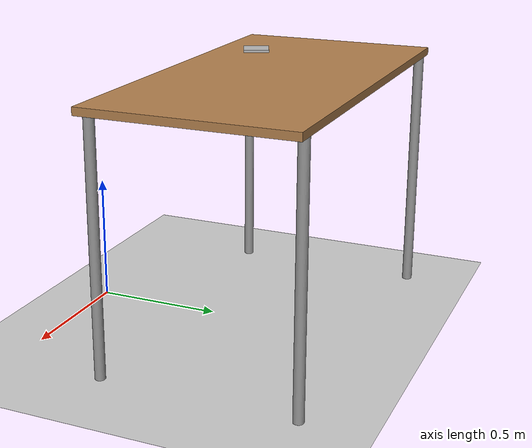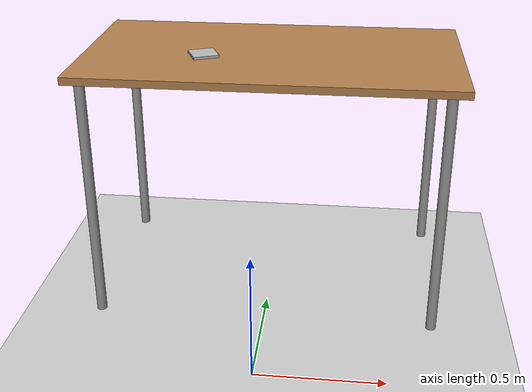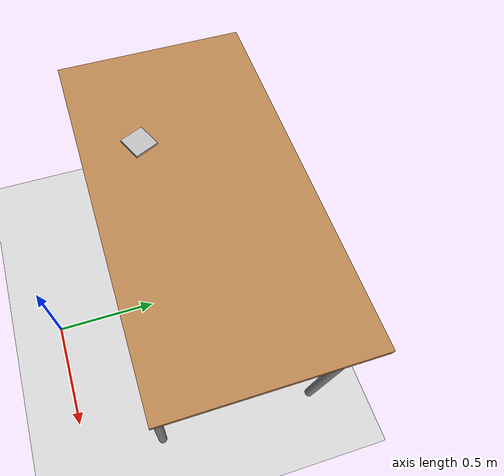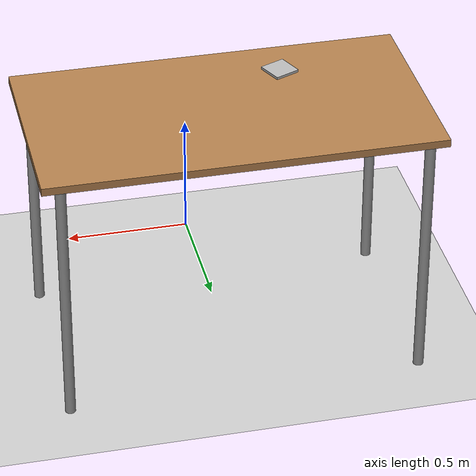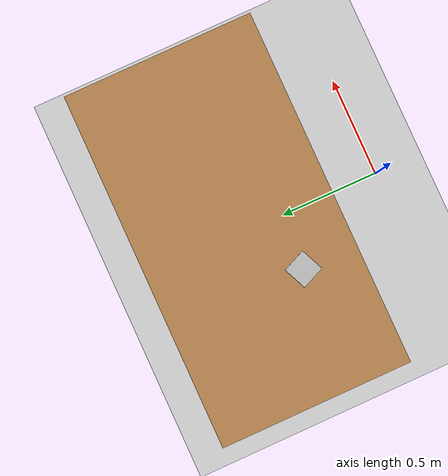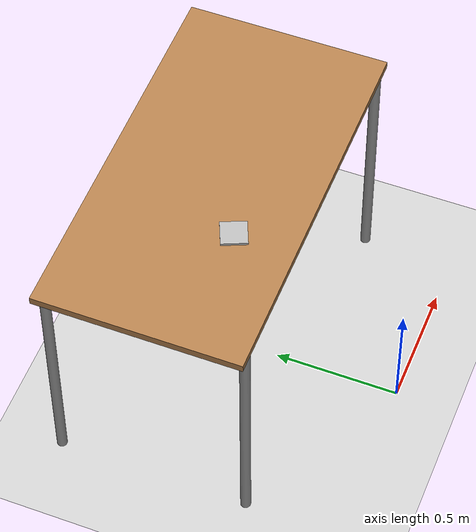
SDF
<?xml version="1.0" ?>

<sdf version="1.5">
	<world name="lab">
		<!-- A global light source -->
		<include>
			<uri>model://sun</uri>
		</include>

		<!-- A ground plane -->
		<include>
			<uri>model://ground_plane</uri>
		</include>

		<!-- A table -->
		<include>
			<uri>model://table</uri>
			<pose>0 0.75 0 0 0 0</pose>
		</include>

		<!-- A box -->
		<include>
			<uri>model://Apriltag36_11_00000</uri>
			<pose>-0.25 0.58 1.05 0 0 0.41</pose>
		</include>

	</world>
</sdf>

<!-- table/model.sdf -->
<sdf version="1.5">
  <model name="table">
    <static>true</static>
    <link name="link">
      <collision name="surface">
        <pose>0 0 1.0 0 0 0</pose>
        <geometry>
          <box>
            <size>1.5 0.8 0.03</size>
          </box>
        </geometry>
        <surface>
          <friction>
            <ode>
              <mu>0.6</mu>
              <mu2>0.6</mu2>
            </ode>
          </friction>
        </surface>
      </collision>
      <visual name="visual1">
        <pose>0 0 1.0 0 0 0</pose>
        <geometry>
          <box>
            <size>1.5 0.8 0.03</size>
          </box>
        </geometry>
        <material>
          <script>
            <uri>model://media/materials/scripts/gazebo.material</uri>
            <name>Gazebo/Wood</name>
          </script>
        </material>
      </visual>
      <collision name="front_left_leg">
        <pose>0.68 0.38 0.5 0 0 0</pose>
        <geometry>
          <cylinder>
            <radius>0.02</radius>
            <length>1.0</length>
          </cylinder>
        </geometry>
      </collision>
      <visual name="front_left_leg">
        <pose>0.68 0.38 0.5 0 0 0</pose>
        <geometry>
          <cylinder>
            <radius>0.02</radius>
            <length>1.0</length>
          </cylinder>
        </geometry>
        <material>
          <script>
            <uri>model://media/materials/scripts/gazebo.material</uri>
            <name>Gazebo/Grey</name>
          </script>
        </material>
      </visual>
      <collision name="front_right_leg">
        <pose>0.68 -0.38 0.5 0 0 0</pose>
        <geometry>
          <cylinder>
            <radius>0.02</radius>
            <length>1.0</length>
          </cylinder>
        </geometry>
      </collision>
      <visual name="front_right_leg">
        <pose>0.68 -0.38 0.5 0 0 0</pose>
        <geometry>
          <cylinder>
            <radius>0.02</radius>
            <length>1.0</length>
          </cylinder>
        </geometry>
        <material>
          <script>
            <uri>model://media/materials/scripts/gazebo.material</uri>
            <name>Gazebo/Grey</name>
          </script>
        </material>
      </visual>
      <collision name="back_right_leg">
        <pose>-0.68 -0.38 0.5 0 0 0</pose>
        <geometry>
          <cylinder>
            <radius>0.02</radius>
            <length>1.0</length>
          </cylinder>
        </geometry>
      </collision>
      <visual name="back_right_leg">
        <pose>-0.68 -0.38 0.5 0 0 0</pose>
        <geometry>
          <cylinder>
            <radius>0.02</radius>
            <length>1.0</length>
          </cylinder>
        </geometry>
        <material>
          <script>
            <uri>model://media/materials/scripts/gazebo.material</uri>
            <name>Gazebo/Grey</name>
          </script>
        </material>
      </visual>
      <collision name="back_left_leg">
        <pose>-0.68 0.38 0.5 0 0 0</pose>
        <geometry>
          <cylinder>
            <radius>0.02</radius>
            <length>1.0</length>
          </cylinder>
        </geometry>
      </collision>
      <visual name="back_left_leg">
        <pose>-0.68 0.38 0.5 0 0 0</pose>
        <geometry>
          <cylinder>
            <radius>0.02</radius>
            <length>1.0</length>
          </cylinder>
        </geometry>
        <material>
          <script>
            <uri>model://media/materials/scripts/gazebo.material</uri>
            <name>Gazebo/Grey</name>
          </script>
        </material>
      </visual>
    </link>
  </model>
</sdf>

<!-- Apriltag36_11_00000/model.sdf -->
<sdf version='1.6'>
  <model name='Apriltag36_11_00000'>
    <link name='main'>
    <pose frame=''>0 0 0 0 0 0</pose>
      <visual name='main_Visual'>
        <geometry>
          <box>
          <size>0.1 0.1 0.01</size>
          </box>
        </geometry>
           <material>
          <script>
            <uri>model://Apriltag36_11_00000/materials/scripts</uri>
            <uri>model://Apriltag36_11_00000/materials/textures</uri>
            <name>Apriltag36_11_00000</name>
          </script>
        </material>
      </visual>
     </link>
    <static>1</static>
  </model>
</sdf>
